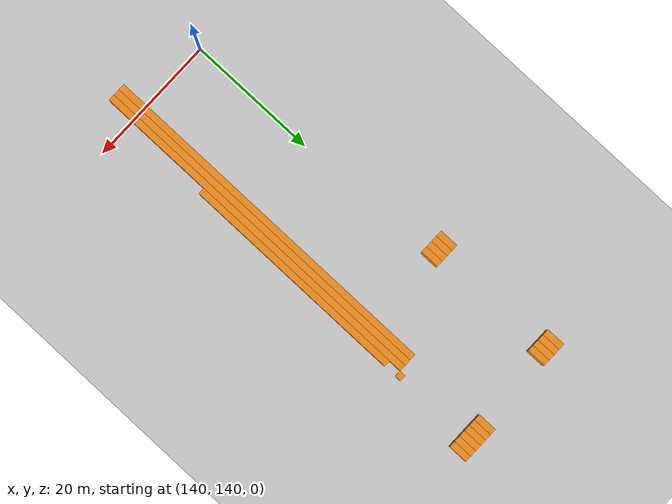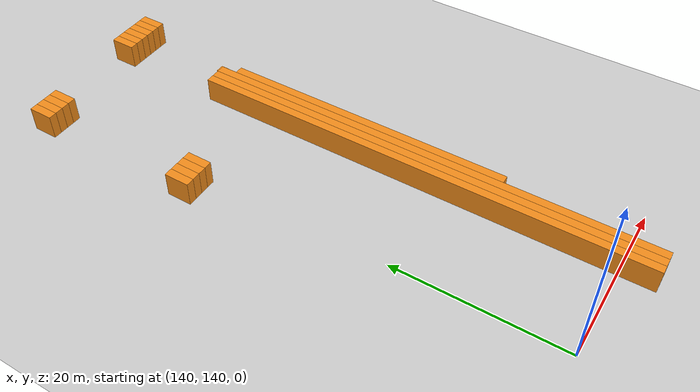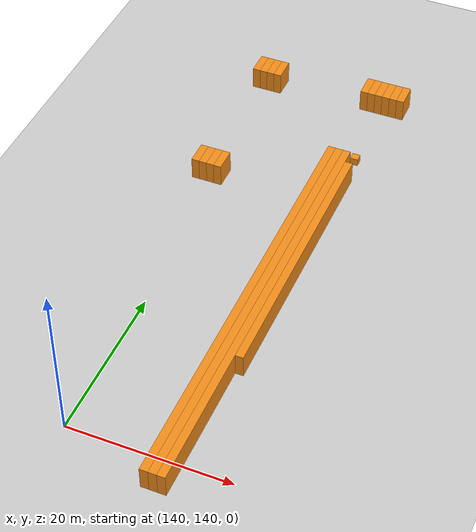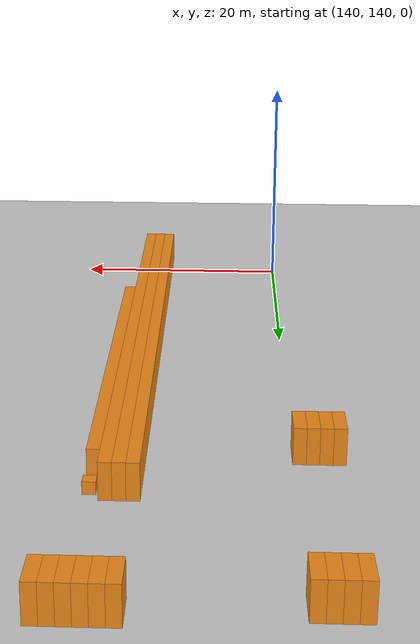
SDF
<sdf version="1.6">
 <world name="default">
  <include><uri>model://ground_plane</uri></include>
  <model name="unit_box_1461">
   <pose>136.50   183.50     1.50 0 0 0</pose>
   <static>1</static>
   <link name="link">
    <inertial>
     <mass>5000</mass>
     <inertia><ixx>200</ixx><ixy>0</ixy><ixz>0</ixz><iyy>200</iyy><iyz>0</iyz><izz>200</izz></inertia>
    </inertial>
    <collision name="collision"><geometry><box><size>1 3 3</size></box></geometry></collision>
    <visual name="visual">
     <geometry><box><size>1 3 3</size></box></geometry>
     <material>
      <script><name>Gazebo/Orange</name><uri>file://media/materials/scripts/gazebo.material</uri></script>
     </material>
    </visual>
   </link>
  </model>
  <model name="unit_box_1462">
   <pose>136.50   203.50     1.50 0 0 0</pose>
   <static>1</static>
   <link name="link">
    <inertial>
     <mass>5000</mass>
     <inertia><ixx>200</ixx><ixy>0</ixy><ixz>0</ixz><iyy>200</iyy><iyz>0</iyz><izz>200</izz></inertia>
    </inertial>
    <collision name="collision"><geometry><box><size>1 3 3</size></box></geometry></collision>
    <visual name="visual">
     <geometry><box><size>1 3 3</size></box></geometry>
     <material>
      <script><name>Gazebo/Orange</name><uri>file://media/materials/scripts/gazebo.material</uri></script>
     </material>
    </visual>
   </link>
  </model>
  <model name="unit_box_1475">
   <pose>137.50   183.50     1.50 0 0 0</pose>
   <static>1</static>
   <link name="link">
    <inertial>
     <mass>5000</mass>
     <inertia><ixx>200</ixx><ixy>0</ixy><ixz>0</ixz><iyy>200</iyy><iyz>0</iyz><izz>200</izz></inertia>
    </inertial>
    <collision name="collision"><geometry><box><size>1 3 3</size></box></geometry></collision>
    <visual name="visual">
     <geometry><box><size>1 3 3</size></box></geometry>
     <material>
      <script><name>Gazebo/Orange</name><uri>file://media/materials/scripts/gazebo.material</uri></script>
     </material>
    </visual>
   </link>
  </model>
  <model name="unit_box_1476">
   <pose>137.50   203.50     1.50 0 0 0</pose>
   <static>1</static>
   <link name="link">
    <inertial>
     <mass>5000</mass>
     <inertia><ixx>200</ixx><ixy>0</ixy><ixz>0</ixz><iyy>200</iyy><iyz>0</iyz><izz>200</izz></inertia>
    </inertial>
    <collision name="collision"><geometry><box><size>1 3 3</size></box></geometry></collision>
    <visual name="visual">
     <geometry><box><size>1 3 3</size></box></geometry>
     <material>
      <script><name>Gazebo/Orange</name><uri>file://media/materials/scripts/gazebo.material</uri></script>
     </material>
    </visual>
   </link>
  </model>
  <model name="unit_box_1488">
   <pose>138.50   183.50     1.50 0 0 0</pose>
   <static>1</static>
   <link name="link">
    <inertial>
     <mass>5000</mass>
     <inertia><ixx>200</ixx><ixy>0</ixy><ixz>0</ixz><iyy>200</iyy><iyz>0</iyz><izz>200</izz></inertia>
    </inertial>
    <collision name="collision"><geometry><box><size>1 3 3</size></box></geometry></collision>
    <visual name="visual">
     <geometry><box><size>1 3 3</size></box></geometry>
     <material>
      <script><name>Gazebo/Orange</name><uri>file://media/materials/scripts/gazebo.material</uri></script>
     </material>
    </visual>
   </link>
  </model>
  <model name="unit_box_1489">
   <pose>138.50   203.50     1.50 0 0 0</pose>
   <static>1</static>
   <link name="link">
    <inertial>
     <mass>5000</mass>
     <inertia><ixx>200</ixx><ixy>0</ixy><ixz>0</ixz><iyy>200</iyy><iyz>0</iyz><izz>200</izz></inertia>
    </inertial>
    <collision name="collision"><geometry><box><size>1 3 3</size></box></geometry></collision>
    <visual name="visual">
     <geometry><box><size>1 3 3</size></box></geometry>
     <material>
      <script><name>Gazebo/Orange</name><uri>file://media/materials/scripts/gazebo.material</uri></script>
     </material>
    </visual>
   </link>
  </model>
  <model name="unit_box_1501">
   <pose>139.50   183.50     1.50 0 0 0</pose>
   <static>1</static>
   <link name="link">
    <inertial>
     <mass>5000</mass>
     <inertia><ixx>200</ixx><ixy>0</ixy><ixz>0</ixz><iyy>200</iyy><iyz>0</iyz><izz>200</izz></inertia>
    </inertial>
    <collision name="collision"><geometry><box><size>1 3 3</size></box></geometry></collision>
    <visual name="visual">
     <geometry><box><size>1 3 3</size></box></geometry>
     <material>
      <script><name>Gazebo/Orange</name><uri>file://media/materials/scripts/gazebo.material</uri></script>
     </material>
    </visual>
   </link>
  </model>
  <model name="unit_box_1502">
   <pose>139.50   203.50     1.50 0 0 0</pose>
   <static>1</static>
   <link name="link">
    <inertial>
     <mass>5000</mass>
     <inertia><ixx>200</ixx><ixy>0</ixy><ixz>0</ixz><iyy>200</iyy><iyz>0</iyz><izz>200</izz></inertia>
    </inertial>
    <collision name="collision"><geometry><box><size>1 3 3</size></box></geometry></collision>
    <visual name="visual">
     <geometry><box><size>1 3 3</size></box></geometry>
     <material>
      <script><name>Gazebo/Orange</name><uri>file://media/materials/scripts/gazebo.material</uri></script>
     </material>
    </visual>
   </link>
  </model>
  <model name="unit_box_1603">
   <pose>151.50   163.50     1.50 0 0 0</pose>
   <static>1</static>
   <link name="link">
    <inertial>
     <mass>5000</mass>
     <inertia><ixx>200</ixx><ixy>0</ixy><ixz>0</ixz><iyy>200</iyy><iyz>0</iyz><izz>200</izz></inertia>
    </inertial>
    <collision name="collision"><geometry><box><size>1 55 3</size></box></geometry></collision>
    <visual name="visual">
     <geometry><box><size>1 55 3</size></box></geometry>
     <material>
      <script><name>Gazebo/Orange</name><uri>file://media/materials/scripts/gazebo.material</uri></script>
     </material>
    </visual>
   </link>
  </model>
  <model name="unit_box_1604">
   <pose>151.50   204.50     1.50 0 0 0</pose>
   <static>1</static>
   <link name="link">
    <inertial>
     <mass>5000</mass>
     <inertia><ixx>200</ixx><ixy>0</ixy><ixz>0</ixz><iyy>200</iyy><iyz>0</iyz><izz>200</izz></inertia>
    </inertial>
    <collision name="collision"><geometry><box><size>1 3 3</size></box></geometry></collision>
    <visual name="visual">
     <geometry><box><size>1 3 3</size></box></geometry>
     <material>
      <script><name>Gazebo/Orange</name><uri>file://media/materials/scripts/gazebo.material</uri></script>
     </material>
    </visual>
   </link>
  </model>
  <model name="unit_box_1612">
   <pose>152.50   163.50     1.50 0 0 0</pose>
   <static>1</static>
   <link name="link">
    <inertial>
     <mass>5000</mass>
     <inertia><ixx>200</ixx><ixy>0</ixy><ixz>0</ixz><iyy>200</iyy><iyz>0</iyz><izz>200</izz></inertia>
    </inertial>
    <collision name="collision"><geometry><box><size>1 55 3</size></box></geometry></collision>
    <visual name="visual">
     <geometry><box><size>1 55 3</size></box></geometry>
     <material>
      <script><name>Gazebo/Orange</name><uri>file://media/materials/scripts/gazebo.material</uri></script>
     </material>
    </visual>
   </link>
  </model>
  <model name="unit_box_1613">
   <pose>152.50   204.50     1.50 0 0 0</pose>
   <static>1</static>
   <link name="link">
    <inertial>
     <mass>5000</mass>
     <inertia><ixx>200</ixx><ixy>0</ixy><ixz>0</ixz><iyy>200</iyy><iyz>0</iyz><izz>200</izz></inertia>
    </inertial>
    <collision name="collision"><geometry><box><size>1 3 3</size></box></geometry></collision>
    <visual name="visual">
     <geometry><box><size>1 3 3</size></box></geometry>
     <material>
      <script><name>Gazebo/Orange</name><uri>file://media/materials/scripts/gazebo.material</uri></script>
     </material>
    </visual>
   </link>
  </model>
  <model name="unit_box_1620">
   <pose>153.50   163.50     1.50 0 0 0</pose>
   <static>1</static>
   <link name="link">
    <inertial>
     <mass>5000</mass>
     <inertia><ixx>200</ixx><ixy>0</ixy><ixz>0</ixz><iyy>200</iyy><iyz>0</iyz><izz>200</izz></inertia>
    </inertial>
    <collision name="collision"><geometry><box><size>1 55 3</size></box></geometry></collision>
    <visual name="visual">
     <geometry><box><size>1 55 3</size></box></geometry>
     <material>
      <script><name>Gazebo/Orange</name><uri>file://media/materials/scripts/gazebo.material</uri></script>
     </material>
    </visual>
   </link>
  </model>
  <model name="unit_box_1621">
   <pose>153.50   204.50     1.50 0 0 0</pose>
   <static>1</static>
   <link name="link">
    <inertial>
     <mass>5000</mass>
     <inertia><ixx>200</ixx><ixy>0</ixy><ixz>0</ixz><iyy>200</iyy><iyz>0</iyz><izz>200</izz></inertia>
    </inertial>
    <collision name="collision"><geometry><box><size>1 3 3</size></box></geometry></collision>
    <visual name="visual">
     <geometry><box><size>1 3 3</size></box></geometry>
     <material>
      <script><name>Gazebo/Orange</name><uri>file://media/materials/scripts/gazebo.material</uri></script>
     </material>
    </visual>
   </link>
  </model>
  <model name="unit_box_1629">
   <pose>154.50   171.50     1.50 0 0 0</pose>
   <static>1</static>
   <link name="link">
    <inertial>
     <mass>5000</mass>
     <inertia><ixx>200</ixx><ixy>0</ixy><ixz>0</ixz><iyy>200</iyy><iyz>0</iyz><izz>200</izz></inertia>
    </inertial>
    <collision name="collision"><geometry><box><size>1 35 3</size></box></geometry></collision>
    <visual name="visual">
     <geometry><box><size>1 35 3</size></box></geometry>
     <material>
      <script><name>Gazebo/Orange</name><uri>file://media/materials/scripts/gazebo.material</uri></script>
     </material>
    </visual>
   </link>
  </model>
  <model name="unit_box_1630">
   <pose>154.50   191.50     1.50 0 0 0</pose>
   <static>1</static>
   <link name="link">
    <inertial>
     <mass>5000</mass>
     <inertia><ixx>200</ixx><ixy>0</ixy><ixz>0</ixz><iyy>200</iyy><iyz>0</iyz><izz>200</izz></inertia>
    </inertial>
    <collision name="collision"><geometry><box><size>1 1 1</size></box></geometry></collision>
    <visual name="visual">
     <geometry><box><size>1 1 1</size></box></geometry>
     <material>
      <script><name>Gazebo/Orange</name><uri>file://media/materials/scripts/gazebo.material</uri></script>
     </material>
    </visual>
   </link>
  </model>
  <model name="unit_box_1631">
   <pose>154.50   204.50     1.50 0 0 0</pose>
   <static>1</static>
   <link name="link">
    <inertial>
     <mass>5000</mass>
     <inertia><ixx>200</ixx><ixy>0</ixy><ixz>0</ixz><iyy>200</iyy><iyz>0</iyz><izz>200</izz></inertia>
    </inertial>
    <collision name="collision"><geometry><box><size>1 3 3</size></box></geometry></collision>
    <visual name="visual">
     <geometry><box><size>1 3 3</size></box></geometry>
     <material>
      <script><name>Gazebo/Orange</name><uri>file://media/materials/scripts/gazebo.material</uri></script>
     </material>
    </visual>
   </link>
  </model>
  <model name="unit_box_1639">
   <pose>155.50   204.50     1.50 0 0 0</pose>
   <static>1</static>
   <link name="link">
    <inertial>
     <mass>5000</mass>
     <inertia><ixx>200</ixx><ixy>0</ixy><ixz>0</ixz><iyy>200</iyy><iyz>0</iyz><izz>200</izz></inertia>
    </inertial>
    <collision name="collision"><geometry><box><size>1 3 3</size></box></geometry></collision>
    <visual name="visual">
     <geometry><box><size>1 3 3</size></box></geometry>
     <material>
      <script><name>Gazebo/Orange</name><uri>file://media/materials/scripts/gazebo.material</uri></script>
     </material>
    </visual>
   </link>
  </model>
  <model name="unit_box_1647">
   <pose>156.50   204.50     1.50 0 0 0</pose>
   <static>1</static>
   <link name="link">
    <inertial>
     <mass>5000</mass>
     <inertia><ixx>200</ixx><ixy>0</ixy><ixz>0</ixz><iyy>200</iyy><iyz>0</iyz><izz>200</izz></inertia>
    </inertial>
    <collision name="collision"><geometry><box><size>1 3 3</size></box></geometry></collision>
    <visual name="visual">
     <geometry><box><size>1 3 3</size></box></geometry>
     <material>
      <script><name>Gazebo/Orange</name><uri>file://media/materials/scripts/gazebo.material</uri></script>
     </material>
    </visual>
   </link>
  </model>
 </world>
</sdf>
